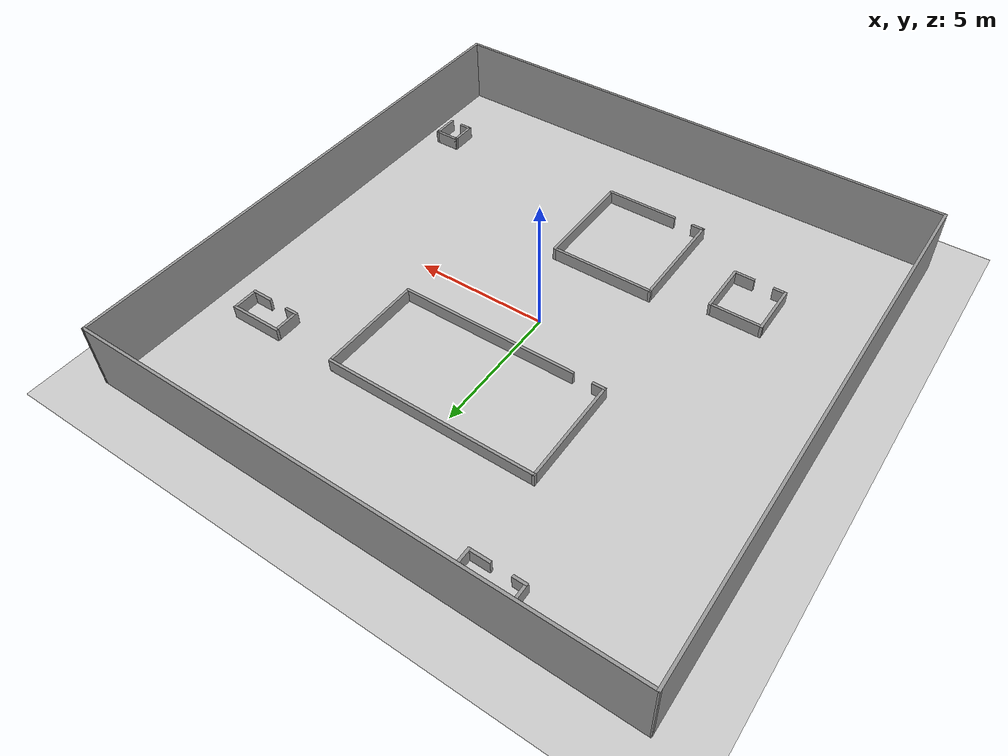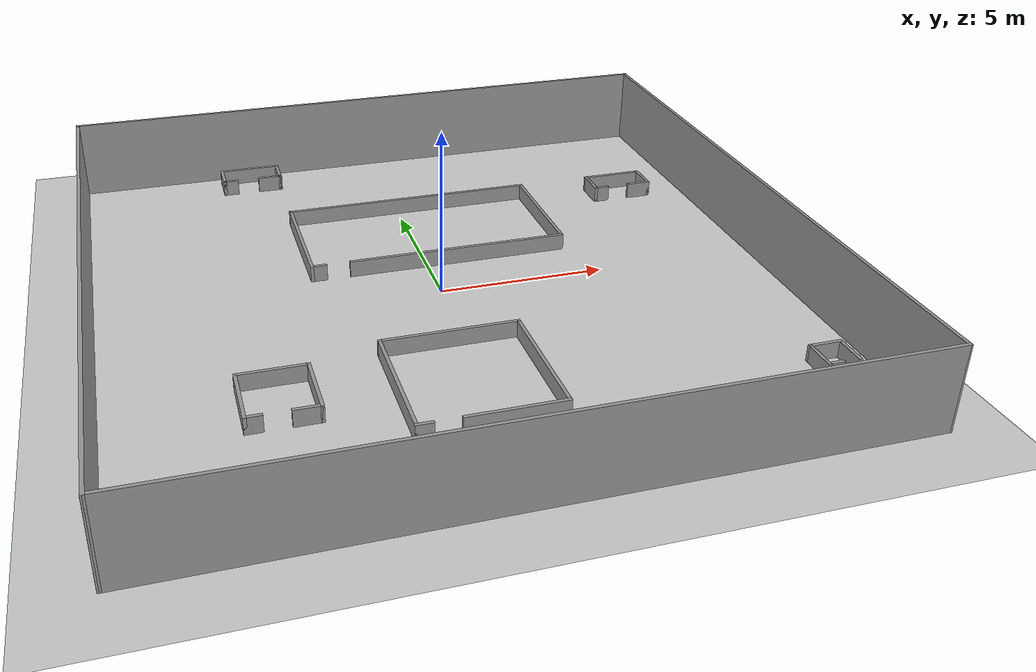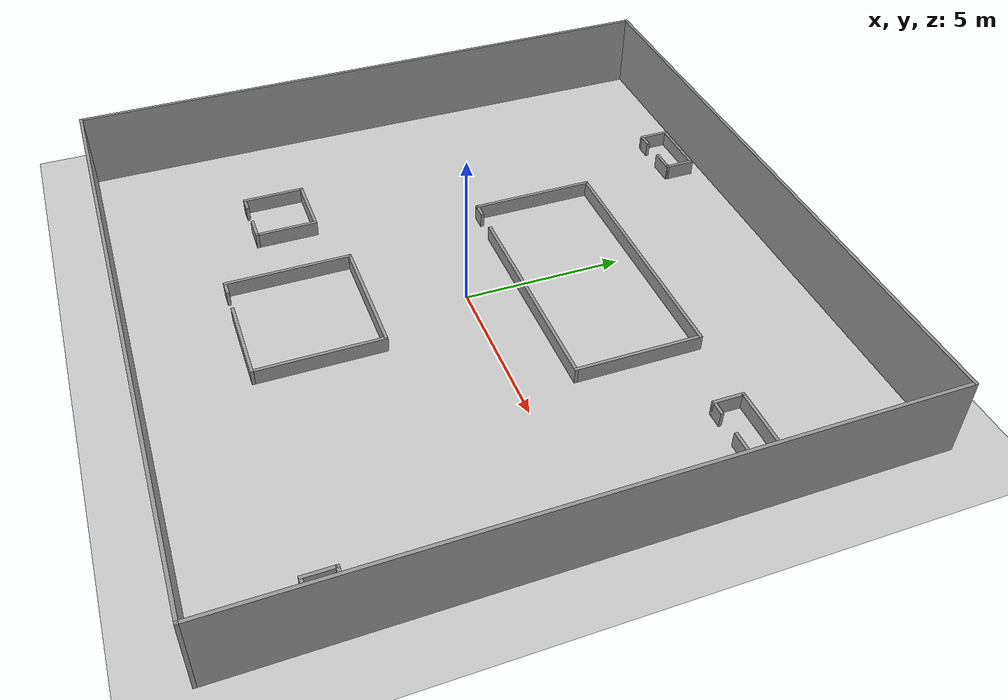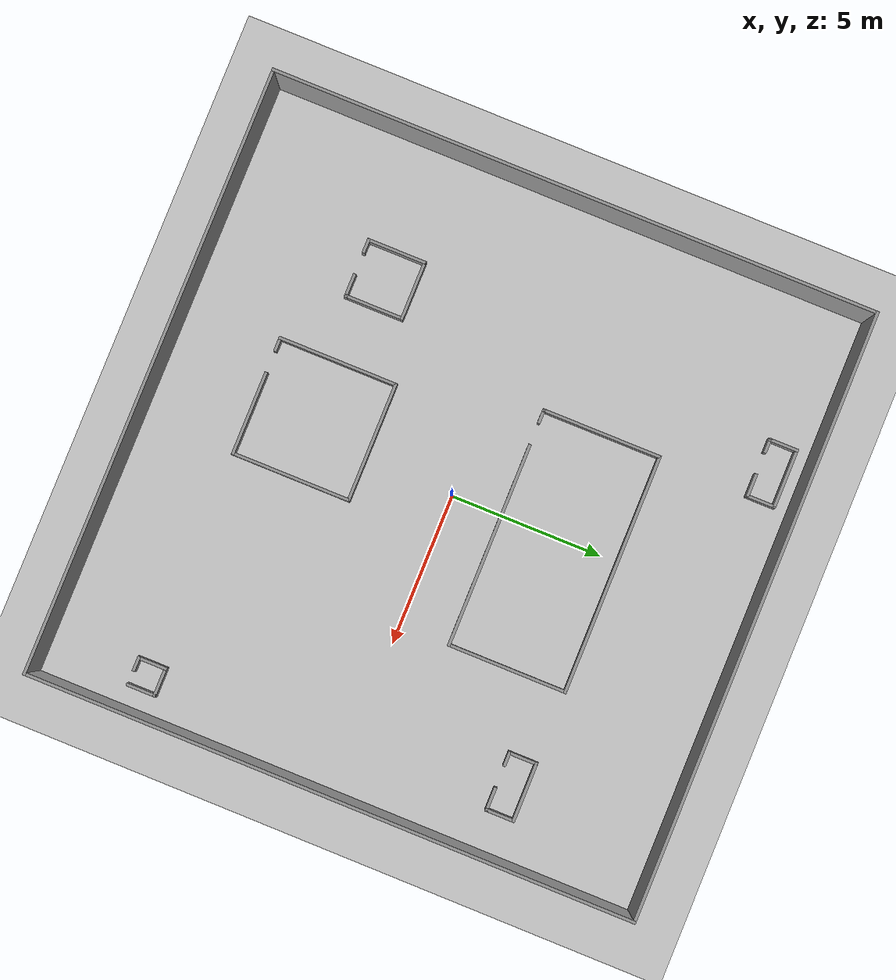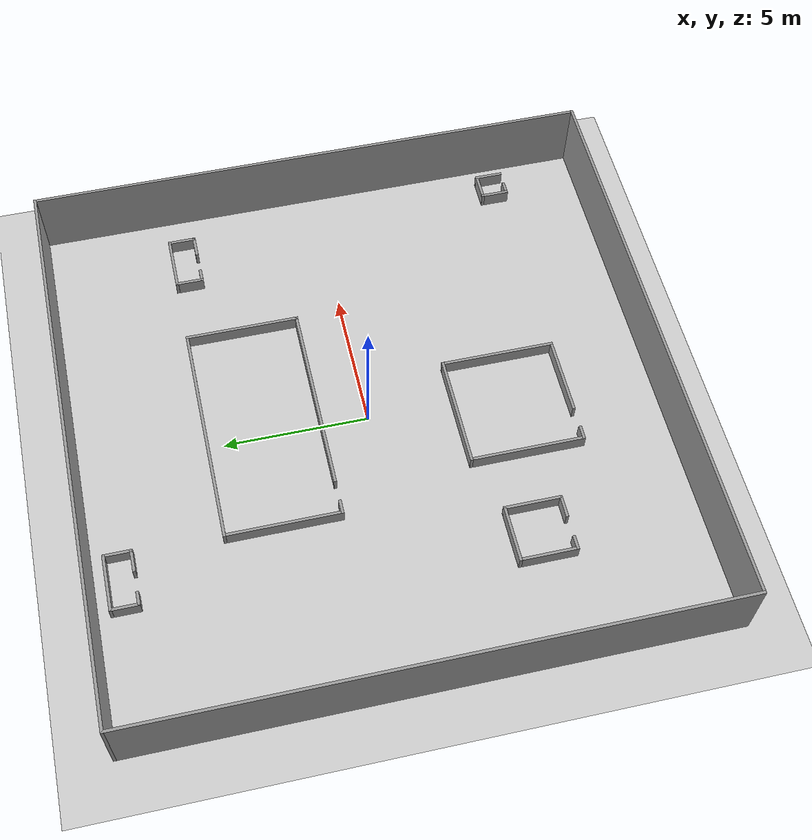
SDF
<sdf version="1.6">
  <world name="default">
    <light name="sun" type="directional">
      <cast_shadows>1</cast_shadows>
      <pose frame="">0 0 10 0 -0 0</pose>
      <diffuse>0.8 0.8 0.8 1</diffuse>
      <specular>0.2 0.2 0.2 1</specular>
      <attenuation>
        <range>1000</range>
        <constant>0.9</constant>
        <linear>0.01</linear>
        <quadratic>0.001</quadratic>
      </attenuation>
      <direction>-0.5 0.1 -0.9</direction>
    </light>
    <model name="ground_plane">
      <static>1</static>
      <link name="link">
        <collision name="collision">
          <geometry>
            <plane>
              <normal>0 0 1</normal>
              <size>20 20</size>
            </plane>
          </geometry>
          <surface>
            <contact>
              <collide_bitmask>65535</collide_bitmask>
              <ode />
            </contact>
            <friction>
              <ode>
                <mu>100</mu>
                <mu2>50</mu2>
              </ode>
              <torsional>
                <ode />
              </torsional>
            </friction>
            <bounce />
          </surface>
          <max_contacts>10</max_contacts>
        </collision>
        <visual name="visual">
          <cast_shadows>0</cast_shadows>
          <geometry>
            <plane>
              <normal>0 0 1</normal>
              <size>20 20</size>
            </plane>
          </geometry>
          <material>
            <script>
              <uri>file://media/materials/scripts/gazebo.material</uri>
              <name>Gazebo/Grey</name>
            </script>
          </material>
        </visual>
        <self_collide>0</self_collide>
        <enable_wind>0</enable_wind>
        <kinematic>0</kinematic>
      </link>
    </model>
     <model name="outsidewall.sdf">
    <pose frame="">0 0 0 0 -0 0</pose>
    <link name="Wall_3">
      <collision name="Wall_3_Collision">
        <geometry>
          <box>
            <size>20 0.10 2.5</size>
          </box>
        </geometry>
        <pose frame="">0 0 1.25 0 -0 0</pose>
      </collision>
      <visual name="Wall_3_Visual">
        <pose frame="">0 0 1.25 0 -0 0</pose>
        <geometry>
          <box>
            <size>20 0.10 2.5</size>
          </box>
        </geometry>
        <material>
          <script>
            <uri>file://media/materials/scripts/gazebo.material</uri>
            <name>Gazebo/Grey</name>
          </script>
          <ambient>1 1 1 1</ambient>
        </material>
        <meta>
          <layer>0</layer>
        </meta>
      </visual>
      <pose frame="">0 9.95 0 0 -0 0</pose>
    </link>
    <link name="Wall_5">
      <collision name="Wall_5_Collision">
        <geometry>
          <box>
            <size>20 0.10 2.5</size>
          </box>
        </geometry>
        <pose frame="">0 0 1.25 0 -0 0</pose>
      </collision>
      <visual name="Wall_5_Visual">
        <pose frame="">0 0 1.25 0 -0 0</pose>
        <geometry>
          <box>
            <size>20 0.10 2.5</size>
          </box>
        </geometry>
        <material>
          <script>
            <uri>file://media/materials/scripts/gazebo.material</uri>
            <name>Gazebo/Grey</name>
          </script>
          <ambient>1 1 1 1</ambient>
        </material>
        <meta>
          <layer>0</layer>
        </meta>
      </visual>
      <pose frame="">-9.95 0 0 0 -0 1.5707</pose>
    </link>
    <link name="Wall_6">
      <collision name="Wall_6_Collision">
        <geometry>
          <box>
            <size>20 0.10 2.5</size>
          </box>
        </geometry>
        <pose frame="">0 0 1.25 0 -0 0</pose>
      </collision>
      <visual name="Wall_6_Visual">
        <pose frame="">0 0 1.25 0 -0 0</pose>
        <geometry>
          <box>
            <size>20 0.10 2.5</size>
          </box>
        </geometry>
        <material>
          <script>
            <uri>file://media/materials/scripts/gazebo.material</uri>
            <name>Gazebo/Grey</name>
          </script>
          <ambient>1 1 1 1</ambient>
        </material>
        <meta>
          <layer>0</layer>
        </meta>
      </visual>
      <pose frame="">0 -9.95 0 0 -0 0</pose>
    </link>
    <link name="Wall_7">
      <collision name="Wall_7_Collision">
        <geometry>
          <box>
            <size>20 0.10 2.5</size>
          </box>
        </geometry>
        <pose frame="">0 0 1.25 0 -0 0</pose>
      </collision>
      <visual name="Wall_7_Visual">
        <pose frame="">0 0 1.25 0 -0 0</pose>
        <geometry>
          <box>
            <size>20 0.10 2.5</size>
          </box>
        </geometry>
        <material>
          <script>
            <uri>file://media/materials/scripts/gazebo.material</uri>
            <name>Gazebo/Grey</name>
          </script>
          <ambient>1 1 1 1</ambient>
        </material>
        <meta>
          <layer>0</layer>
        </meta>
      </visual>
      <pose frame="">9.95 0 0 0 -0 1.5707</pose>
    </link>
    <static>1</static>
  </model>
    <gravity>0 0 -9.8</gravity>
    <magnetic_field>6e-06 2.3e-05 -4.2e-05</magnetic_field>
    <atmosphere type="adiabatic" />
    <physics default="0" name="default_physics" type="ode">
      <max_step_size>0.001</max_step_size>
      <real_time_factor>1</real_time_factor>
      <real_time_update_rate>1000</real_time_update_rate>
    </physics>
    <scene>
      <ambient>0.4 0.4 0.4 1</ambient>
      <background>0.7 0.7 0.7 1</background>
      <shadows>1</shadows>
    </scene>
    <audio>
      <device>default</device>
    </audio>
    <wind />
    <spherical_coordinates>
      <surface_model>EARTH_WGS84</surface_model>
      <latitude_deg>0</latitude_deg>
      <longitude_deg>0</longitude_deg>
      <elevation>0</elevation>
      <heading_deg>0</heading_deg>
    </spherical_coordinates>
    <gui fullscreen="0">
      <camera name="user_camera">
        <pose frame="">17.6964 -3.39131 8.77294 0 0.343643 2.9522</pose>
        <view_controller>orbit</view_controller>
        <projection_type>perspective</projection_type>
      </camera>
    </gui>

  <model name="shape6">
    <pose frame="">-0.6 -4.9 0 0 -0 0</pose>
    <link name="Wall_27">
      <collision name="Wall_27_Collision">
        <geometry>
          <box>
            <size>4 0.1 0.5</size>
          </box>
        </geometry>
        <pose frame="">0 0 0.25 0 -0 0</pose>
      </collision>
      <visual name="Wall_27_Visual">
        <pose frame="">0 0 0.25 0 -0 0</pose>
        <geometry>
          <box>
            <size>4 0.1 0.5</size>
          </box>
        </geometry>
        <material>
          <script>
            <uri>file://media/materials/scripts/gazebo.material</uri>
            <name>Gazebo/Grey</name>
          </script>
          <ambient>1 1 1 1</ambient>
        </material>
        <meta>
          <layer>0</layer>
        </meta>
      </visual>
      <pose frame="">0 1.95 0 0 -0 0</pose>
    </link>
    <link name="Wall_28">
      <collision name="Wall_28_Collision">
        <geometry>
          <box>
            <size>4 0.1 0.5</size>
          </box>
        </geometry>
        <pose frame="">0 0 0.25 0 -0 0</pose>
      </collision>
      <visual name="Wall_28_Visual">
        <pose frame="">0 0 0.25 0 -0 0</pose>
        <geometry>
          <box>
            <size>4 0.1 0.5</size>
          </box>
        </geometry>
        <material>
          <script>
            <uri>file://media/materials/scripts/gazebo.material</uri>
            <name>Gazebo/Grey</name>
          </script>
          <ambient>1 1 1 1</ambient>
        </material>
        <meta>
          <layer>0</layer>
        </meta>
      </visual>
      <pose frame="">1.95 -0 0 0 -0 -1.5708</pose>
    </link>
    <link name="Wall_29">
      <collision name="Wall_29_Collision">
        <geometry>
          <box>
            <size>2.8 0.1 0.5</size>
          </box>
        </geometry>
        <pose frame="">0 0 0.25 0 -0 0</pose>
      </collision>
      <visual name="Wall_29_Visual">
        <pose frame="">0 0 0.25 0 -0 0</pose>
        <geometry>
          <box>
            <size>2.8 0.1 0.5</size>
          </box>
        </geometry>
        <material>
          <script>
            <uri>file://media/materials/scripts/gazebo.material</uri>
            <name>Gazebo/Grey</name>
          </script>
          <ambient>1 1 1 1</ambient>
        </material>
        <meta>
          <layer>0</layer>
        </meta>
      </visual>
      <pose frame="">0.6 -1.95 0 0 -0 3.14159</pose>
    </link>
    <link name="Wall_31">
      <collision name="Wall_31_Collision">
        <geometry>
          <box>
            <size>4 0.1 0.5</size>
          </box>
        </geometry>
        <pose frame="">0 0 0.25 0 -0 0</pose>
      </collision>
      <visual name="Wall_31_Visual">
        <pose frame="">0 0 0.25 0 -0 0</pose>
        <geometry>
          <box>
            <size>4 0.1 0.5</size>
          </box>
        </geometry>
        <material>
          <script>
            <uri>file://media/materials/scripts/gazebo.material</uri>
            <name>Gazebo/Grey</name>
          </script>
          <ambient>1 1 1 1</ambient>
        </material>
        <meta>
          <layer>0</layer>
        </meta>
      </visual>
      <pose frame="">-1.95 -0 0 0 -0 -1.5708</pose>
    </link>
    <link name="Wall_32">
      <collision name="Wall_32_Collision">
        <geometry>
          <box>
            <size>0.5 0.1 0.5</size>
          </box>
        </geometry>
        <pose frame="">0 0 0.25 0 -0 0</pose>
      </collision>
      <visual name="Wall_32_Visual">
        <pose frame="">0 0 0.25 0 -0 0</pose>
        <geometry>
          <box>
            <size>0.5 0.1 0.5</size>
          </box>
        </geometry>
        <material>
          <script>
            <uri>file://media/materials/scripts/gazebo.material</uri>
            <name>Gazebo/Grey</name>
          </script>
          <ambient>1 1 1 1</ambient>
        </material>
        <meta>
          <layer>0</layer>
        </meta>
      </visual>
      <pose frame="">-1.75 -1.95 0 0 -0 0</pose>
    </link>
    <static>1</static>
  </model>
<model name="shape1">
    <pose frame="">7.7 5.1 0 0 -0 0</pose>
    <link name="Wall_0">
      <collision name="Wall_0_Collision">
        <geometry>
          <box>
            <size>2 0.1 0.5</size>
          </box>
        </geometry>
        <pose frame="">0 0 0.25 0 -0 0</pose>
      </collision>
      <visual name="Wall_0_Visual">
        <pose frame="">0 0 0.25 0 -0 0</pose>
        <geometry>
          <box>
            <size>2 0.1 0.5</size>
          </box>
        </geometry>
        <material>
          <script>
            <uri>file://media/materials/scripts/gazebo.material</uri>
            <name>Gazebo/Grey</name>
          </script>
          <ambient>1 1 1 1</ambient>
        </material>
        <meta>
          <layer>0</layer>
        </meta>
      </visual>
      <pose frame="">0 0.45 0 0 -0 0</pose>
    </link>
    <link name="Wall_1">
      <collision name="Wall_1_Collision">
        <geometry>
          <box>
            <size>1 0.1 0.5</size>
          </box>
        </geometry>
        <pose frame="">0 0 0.25 0 -0 0</pose>
      </collision>
      <visual name="Wall_1_Visual">
        <pose frame="">0 0 0.25 0 -0 0</pose>
        <geometry>
          <box>
            <size>1 0.1 0.5</size>
          </box>
        </geometry>
        <material>
          <script>
            <uri>file://media/materials/scripts/gazebo.material</uri>
            <name>Gazebo/Grey</name>
          </script>
          <ambient>1 1 1 1</ambient>
        </material>
        <meta>
          <layer>0</layer>
        </meta>
      </visual>
      <pose frame="">0.95 -0 0 0 -0 -1.5708</pose>
    </link>
    <link name="Wall_2">
      <collision name="Wall_2_Collision">
        <geometry>
          <box>
            <size>0.8 0.1 0.5</size>
          </box>
        </geometry>
        <pose frame="">0 0 0.25 0 -0 0</pose>
      </collision>
      <visual name="Wall_2_Visual">
        <pose frame="">0 0 0.25 0 -0 0</pose>
        <geometry>
          <box>
            <size>0.8 0.1 0.5</size>
          </box>
        </geometry>
        <material>
          <script>
            <uri>file://media/materials/scripts/gazebo.material</uri>
            <name>Gazebo/Grey</name>
          </script>
          <ambient>1 1 1 1</ambient>
        </material>
        <meta>
          <layer>0</layer>
        </meta>
      </visual>
      <pose frame="">0.6 -0.45 0 0 -0 3.14159</pose>
    </link>
    <link name="Wall_4">
      <collision name="Wall_4_Collision">
        <geometry>
          <box>
            <size>1 0.1 0.5</size>
          </box>
        </geometry>
        <pose frame="">0 0 0.25 0 -0 0</pose>
      </collision>
      <visual name="Wall_4_Visual">
        <pose frame="">0 0 0.25 0 -0 0</pose>
        <geometry>
          <box>
            <size>1 0.1 0.5</size>
          </box>
        </geometry>
        <material>
          <script>
            <uri>file://media/materials/scripts/gazebo.material</uri>
            <name>Gazebo/Grey</name>
          </script>
          <ambient>1 1 1 1</ambient>
        </material>
        <meta>
          <layer>0</layer>
        </meta>
      </visual>
      <pose frame="">-0.95 -0 0 0 -0 -1.5708</pose>
    </link>
    <link name="Wall_5">
      <collision name="Wall_5_Collision">
        <geometry>
          <box>
            <size>0.499474 0.1 0.5</size>
          </box>
        </geometry>
        <pose frame="">0 0 0.25 0 -0 0</pose>
      </collision>
      <visual name="Wall_5_Visual">
        <pose frame="">0 0 0.25 0 -0 0</pose>
        <geometry>
          <box>
            <size>0.499474 0.1 0.5</size>
          </box>
        </geometry>
        <material>
          <script>
            <uri>file://media/materials/scripts/gazebo.material</uri>
            <name>Gazebo/Grey</name>
          </script>
          <ambient>1 1 1 1</ambient>
        </material>
        <meta>
          <layer>0</layer>
        </meta>
      </visual>
      <pose frame="">-0.75 -0.45 0 0 -0 0</pose>
    </link>
    <static>1</static>
  </model>
<model name="shape5">
    <pose frame="">-5.5 -4.5 0 0 -0 0</pose>
    <link name="Wall_20">
      <collision name="Wall_20_Collision">
        <geometry>
          <box>
            <size>2 0.1 0.5</size>
          </box>
        </geometry>
        <pose frame="">0 0 0.25 0 -0 0</pose>
      </collision>
      <visual name="Wall_20_Visual">
        <pose frame="">0 0 0.25 0 -0 0</pose>
        <geometry>
          <box>
            <size>2 0.1 0.5</size>
          </box>
        </geometry>
        <material>
          <script>
            <uri>file://media/materials/scripts/gazebo.material</uri>
            <name>Gazebo/Grey</name>
          </script>
          <ambient>1 1 1 1</ambient>
        </material>
        <meta>
          <layer>0</layer>
        </meta>
      </visual>
      <pose frame="">-0 0.95 0 0 -0 0</pose>
    </link>
    <link name="Wall_21">
      <collision name="Wall_21_Collision">
        <geometry>
          <box>
            <size>2 0.1 0.5</size>
          </box>
        </geometry>
        <pose frame="">0 0 0.25 0 -0 0</pose>
      </collision>
      <visual name="Wall_21_Visual">
        <pose frame="">0 0 0.25 0 -0 0</pose>
        <geometry>
          <box>
            <size>2 0.1 0.5</size>
          </box>
        </geometry>
        <material>
          <script>
            <uri>file://media/materials/scripts/gazebo.material</uri>
            <name>Gazebo/Grey</name>
          </script>
          <ambient>1 1 1 1</ambient>
        </material>
        <meta>
          <layer>0</layer>
        </meta>
      </visual>
      <pose frame="">0.95 0 0 0 -0 -1.5708</pose>
    </link>
    <link name="Wall_22">
      <collision name="Wall_22_Collision">
        <geometry>
          <box>
            <size>0.8 0.1 0.5</size>
          </box>
        </geometry>
        <pose frame="">0 0 0.25 0 -0 0</pose>
      </collision>
      <visual name="Wall_22_Visual">
        <pose frame="">0 0 0.25 0 -0 0</pose>
        <geometry>
          <box>
            <size>0.8 0.1 0.5</size>
          </box>
        </geometry>
        <material>
          <script>
            <uri>file://media/materials/scripts/gazebo.material</uri>
            <name>Gazebo/Grey</name>
          </script>
          <ambient>1 1 1 1</ambient>
        </material>
        <meta>
          <layer>0</layer>
        </meta>
      </visual>
      <pose frame="">0.6 -0.95 0 0 -0 3.14159</pose>
    </link>
    <link name="Wall_24">
      <collision name="Wall_24_Collision">
        <geometry>
          <box>
            <size>2 0.1 0.5</size>
          </box>
        </geometry>
        <pose frame="">0 0 0.25 0 -0 0</pose>
      </collision>
      <visual name="Wall_24_Visual">
        <pose frame="">0 0 0.25 0 -0 0</pose>
        <geometry>
          <box>
            <size>2 0.1 0.5</size>
          </box>
        </geometry>
        <material>
          <script>
            <uri>file://media/materials/scripts/gazebo.material</uri>
            <name>Gazebo/Grey</name>
          </script>
          <ambient>1 1 1 1</ambient>
        </material>
        <meta>
          <layer>0</layer>
        </meta>
      </visual>
      <pose frame="">-0.95 0 0 0 -0 -1.5708</pose>
    </link>
    <link name="Wall_25">
      <collision name="Wall_25_Collision">
        <geometry>
          <box>
            <size>0.5 0.1 0.5</size>
          </box>
        </geometry>
        <pose frame="">0 0 0.25 0 -0 0</pose>
      </collision>
      <visual name="Wall_25_Visual">
        <pose frame="">0 0 0.25 0 -0 0</pose>
        <geometry>
          <box>
            <size>0.5 0.1 0.5</size>
          </box>
        </geometry>
        <material>
          <script>
            <uri>file://media/materials/scripts/gazebo.material</uri>
            <name>Gazebo/Grey</name>
          </script>
          <ambient>1 1 1 1</ambient>
        </material>
        <meta>
          <layer>0</layer>
        </meta>
      </visual>
      <pose frame="">-0.75 -0.95 0 0 -0 0</pose>
    </link>
    <static>1</static>
  </model>
<model name="shape1">
    <pose frame="">-4.4 9 0 0 -0 0</pose>
    <link name="Wall_0">
      <collision name="Wall_0_Collision">
        <geometry>
          <box>
            <size>2 0.1 0.5</size>
          </box>
        </geometry>
        <pose frame="">0 0 0.25 0 -0 0</pose>
      </collision>
      <visual name="Wall_0_Visual">
        <pose frame="">0 0 0.25 0 -0 0</pose>
        <geometry>
          <box>
            <size>2 0.1 0.5</size>
          </box>
        </geometry>
        <material>
          <script>
            <uri>file://media/materials/scripts/gazebo.material</uri>
            <name>Gazebo/Grey</name>
          </script>
          <ambient>1 1 1 1</ambient>
        </material>
        <meta>
          <layer>0</layer>
        </meta>
      </visual>
      <pose frame="">0 0.45 0 0 -0 0</pose>
    </link>
    <link name="Wall_1">
      <collision name="Wall_1_Collision">
        <geometry>
          <box>
            <size>1 0.1 0.5</size>
          </box>
        </geometry>
        <pose frame="">0 0 0.25 0 -0 0</pose>
      </collision>
      <visual name="Wall_1_Visual">
        <pose frame="">0 0 0.25 0 -0 0</pose>
        <geometry>
          <box>
            <size>1 0.1 0.5</size>
          </box>
        </geometry>
        <material>
          <script>
            <uri>file://media/materials/scripts/gazebo.material</uri>
            <name>Gazebo/Grey</name>
          </script>
          <ambient>1 1 1 1</ambient>
        </material>
        <meta>
          <layer>0</layer>
        </meta>
      </visual>
      <pose frame="">0.95 -0 0 0 -0 -1.5708</pose>
    </link>
    <link name="Wall_2">
      <collision name="Wall_2_Collision">
        <geometry>
          <box>
            <size>0.8 0.1 0.5</size>
          </box>
        </geometry>
        <pose frame="">0 0 0.25 0 -0 0</pose>
      </collision>
      <visual name="Wall_2_Visual">
        <pose frame="">0 0 0.25 0 -0 0</pose>
        <geometry>
          <box>
            <size>0.8 0.1 0.5</size>
          </box>
        </geometry>
        <material>
          <script>
            <uri>file://media/materials/scripts/gazebo.material</uri>
            <name>Gazebo/Grey</name>
          </script>
          <ambient>1 1 1 1</ambient>
        </material>
        <meta>
          <layer>0</layer>
        </meta>
      </visual>
      <pose frame="">0.6 -0.45 0 0 -0 3.14159</pose>
    </link>
    <link name="Wall_4">
      <collision name="Wall_4_Collision">
        <geometry>
          <box>
            <size>1 0.1 0.5</size>
          </box>
        </geometry>
        <pose frame="">0 0 0.25 0 -0 0</pose>
      </collision>
      <visual name="Wall_4_Visual">
        <pose frame="">0 0 0.25 0 -0 0</pose>
        <geometry>
          <box>
            <size>1 0.1 0.5</size>
          </box>
        </geometry>
        <material>
          <script>
            <uri>file://media/materials/scripts/gazebo.material</uri>
            <name>Gazebo/Grey</name>
          </script>
          <ambient>1 1 1 1</ambient>
        </material>
        <meta>
          <layer>0</layer>
        </meta>
      </visual>
      <pose frame="">-0.95 -0 0 0 -0 -1.5708</pose>
    </link>
    <link name="Wall_5">
      <collision name="Wall_5_Collision">
        <geometry>
          <box>
            <size>0.499474 0.1 0.5</size>
          </box>
        </geometry>
        <pose frame="">0 0 0.25 0 -0 0</pose>
      </collision>
      <visual name="Wall_5_Visual">
        <pose frame="">0 0 0.25 0 -0 0</pose>
        <geometry>
          <box>
            <size>0.499474 0.1 0.5</size>
          </box>
        </geometry>
        <material>
          <script>
            <uri>file://media/materials/scripts/gazebo.material</uri>
            <name>Gazebo/Grey</name>
          </script>
          <ambient>1 1 1 1</ambient>
        </material>
        <meta>
          <layer>0</layer>
        </meta>
      </visual>
      <pose frame="">-0.75 -0.45 0 0 -0 0</pose>
    </link>
    <static>1</static>
  </model>
<model name="shape4">
    <pose frame="">8.8 -6.7 0 0 -0 0</pose>
    <link name="Wall_14">
      <collision name="Wall_14_Collision">
        <geometry>
          <box>
            <size>1 0.1 0.5</size>
          </box>
        </geometry>
        <pose frame="">0 0 0.25 0 -0 0</pose>
      </collision>
      <visual name="Wall_14_Visual">
        <pose frame="">0 0 0.25 0 -0 0</pose>
        <geometry>
          <box>
            <size>1 0.1 0.5</size>
          </box>
        </geometry>
        <material>
          <script>
            <uri>file://media/materials/scripts/gazebo.material</uri>
            <name>Gazebo/Grey</name>
          </script>
          <ambient>1 1 1 1</ambient>
        </material>
        <meta>
          <layer>0</layer>
        </meta>
      </visual>
      <pose frame="">-0 0.45 0 0 -0 0</pose>
    </link>
    <link name="Wall_15">
      <collision name="Wall_15_Collision">
        <geometry>
          <box>
            <size>1 0.1 0.5</size>
          </box>
        </geometry>
        <pose frame="">0 0 0.25 0 -0 0</pose>
      </collision>
      <visual name="Wall_15_Visual">
        <pose frame="">0 0 0.25 0 -0 0</pose>
        <geometry>
          <box>
            <size>1 0.1 0.5</size>
          </box>
        </geometry>
        <material>
          <script>
            <uri>file://media/materials/scripts/gazebo.material</uri>
            <name>Gazebo/Grey</name>
          </script>
          <ambient>1 1 1 1</ambient>
        </material>
        <meta>
          <layer>0</layer>
        </meta>
      </visual>
      <pose frame="">0.45 -0 0 0 -0 -1.5708</pose>
    </link>
    <link name="Wall_17">
      <collision name="Wall_17_Collision">
        <geometry>
          <box>
            <size>1 0.1 0.5</size>
          </box>
        </geometry>
        <pose frame="">0 0 0.25 0 -0 0</pose>
      </collision>
      <visual name="Wall_17_Visual">
        <pose frame="">0 0 0.25 0 -0 0</pose>
        <geometry>
          <box>
            <size>1 0.1 0.5</size>
          </box>
        </geometry>
        <material>
          <script>
            <uri>file://media/materials/scripts/gazebo.material</uri>
            <name>Gazebo/Grey</name>
          </script>
          <ambient>1 1 1 1</ambient>
        </material>
        <meta>
          <layer>0</layer>
        </meta>
      </visual>
      <pose frame="">-0.45 -0 0 0 -0 -1.5708</pose>
    </link>
    <link name="Wall_18">
      <collision name="Wall_18_Collision">
        <geometry>
          <box>
            <size>0.5 0.1 0.5</size>
          </box>
        </geometry>
        <pose frame="">0 0 0.25 0 -0 0</pose>
      </collision>
      <visual name="Wall_18_Visual">
        <pose frame="">0 0 0.25 0 -0 0</pose>
        <geometry>
          <box>
            <size>0.5 0.1 0.5</size>
          </box>
        </geometry>
        <material>
          <script>
            <uri>file://media/materials/scripts/gazebo.material</uri>
            <name>Gazebo/Grey</name>
          </script>
          <ambient>1 1 1 1</ambient>
        </material>
        <meta>
          <layer>0</layer>
        </meta>
      </visual>
      <pose frame="">-0.25 -0.45 0 0 -0 0</pose>
    </link>
    <static>1</static>
  </model>
<model name="shape3">
    <pose frame="">0.4 3.6 0 0 -0 0</pose>
    <link name="Wall_11">
      <collision name="Wall_11_Collision">
        <geometry>
          <box>
            <size>4 0.1 0.5</size>
          </box>
        </geometry>
        <pose frame="">0 0 0.25 0 -0 0</pose>
      </collision>
      <visual name="Wall_11_Visual">
        <pose frame="">0 0 0.25 0 -0 0</pose>
        <geometry>
          <box>
            <size>4 0.1 0.5</size>
          </box>
        </geometry>
        <material>
          <script>
            <uri>file://media/materials/scripts/gazebo.material</uri>
            <name>Gazebo/Grey</name>
          </script>
          <ambient>1 1 1 1</ambient>
        </material>
        <meta>
          <layer>0</layer>
        </meta>
      </visual>
      <pose frame="">-3.95 0 0 0 -0 -1.5708</pose>
    </link>
    <link name="Wall_12">
      <collision name="Wall_12_Collision">
        <geometry>
          <box>
            <size>0.5 0.1 0.5</size>
          </box>
        </geometry>
        <pose frame="">0 0 0.25 0 -0 0</pose>
      </collision>
      <visual name="Wall_12_Visual">
        <pose frame="">0 0 0.25 0 -0 0</pose>
        <geometry>
          <box>
            <size>0.5 0.1 0.5</size>
          </box>
        </geometry>
        <material>
          <script>
            <uri>file://media/materials/scripts/gazebo.material</uri>
            <name>Gazebo/Grey</name>
          </script>
          <ambient>1 1 1 1</ambient>
        </material>
        <meta>
          <layer>0</layer>
        </meta>
      </visual>
      <pose frame="">-3.75 -1.95 0 0 -0 0</pose>
    </link>
    <link name="Wall_7">
      <collision name="Wall_7_Collision">
        <geometry>
          <box>
            <size>8 0.1 0.5</size>
          </box>
        </geometry>
        <pose frame="">0 0 0.25 0 -0 0</pose>
      </collision>
      <visual name="Wall_7_Visual">
        <pose frame="">0 0 0.25 0 -0 0</pose>
        <geometry>
          <box>
            <size>8 0.1 0.5</size>
          </box>
        </geometry>
        <material>
          <script>
            <uri>file://media/materials/scripts/gazebo.material</uri>
            <name>Gazebo/Grey</name>
          </script>
          <ambient>1 1 1 1</ambient>
        </material>
        <meta>
          <layer>0</layer>
        </meta>
      </visual>
      <pose frame="">-0 1.95 0 0 -0 0</pose>
    </link>
    <link name="Wall_8">
      <collision name="Wall_8_Collision">
        <geometry>
          <box>
            <size>4 0.1 0.5</size>
          </box>
        </geometry>
        <pose frame="">0 0 0.25 0 -0 0</pose>
      </collision>
      <visual name="Wall_8_Visual">
        <pose frame="">0 0 0.25 0 -0 0</pose>
        <geometry>
          <box>
            <size>4 0.1 0.5</size>
          </box>
        </geometry>
        <material>
          <script>
            <uri>file://media/materials/scripts/gazebo.material</uri>
            <name>Gazebo/Grey</name>
          </script>
          <ambient>1 1 1 1</ambient>
        </material>
        <meta>
          <layer>0</layer>
        </meta>
      </visual>
      <pose frame="">3.95 0 0 0 -0 -1.5708</pose>
    </link>
    <link name="Wall_9">
      <collision name="Wall_9_Collision">
        <geometry>
          <box>
            <size>6.8 0.1 0.5</size>
          </box>
        </geometry>
        <pose frame="">0 0 0.25 0 -0 0</pose>
      </collision>
      <visual name="Wall_9_Visual">
        <pose frame="">0 0 0.25 0 -0 0</pose>
        <geometry>
          <box>
            <size>6.8 0.1 0.5</size>
          </box>
        </geometry>
        <material>
          <script>
            <uri>file://media/materials/scripts/gazebo.material</uri>
            <name>Gazebo/Grey</name>
          </script>
          <ambient>1 1 1 1</ambient>
        </material>
        <meta>
          <layer>0</layer>
        </meta>
      </visual>
      <pose frame="">0.6 -1.95 0 0 -0 3.14159</pose>
    </link>
    <static>1</static>
  </model>
</world>
</sdf>
